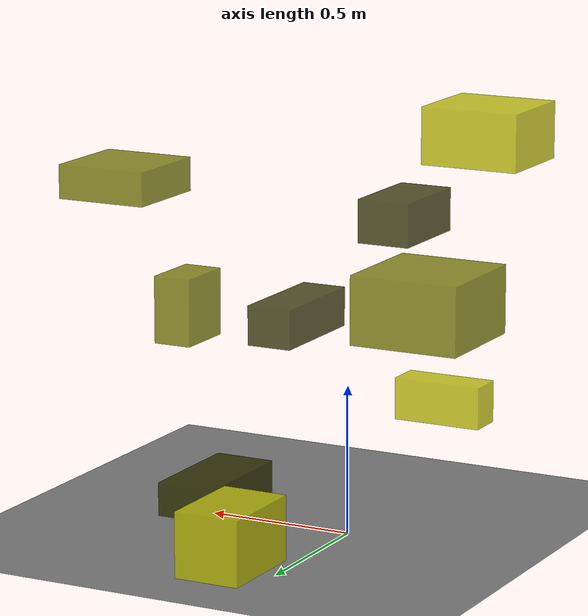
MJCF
<?xml version="1.0"?>
<mujoco model="obstacle_scene">
  <compiler angle="radian" coordinate="local"/>
  <option timestep="0.001" gravity="0 0 -9.81"/>

  <asset>
    <material name="obstacle_mat" rgba="0.8 0.8 0.0 0.8"/>
    <material name="ground_mat" rgba="0.5 0.5 0.5 1"/>
  </asset>

  <worldbody>
    <!-- Ground plane -->
    <geom name="ground" type="plane" size="3 3 0.1" material="ground_mat"/>

    <!-- Obstacles -->
    <body name="obstacle_0" pos="-0.116936 0.575802 0.869789">
      <geom name="obs_0" type="box" size="0.071110 0.181151 0.061280" rgba="0.2 0.2 0.0 0.8"/>
    </body>
    <body name="obstacle_1" pos="0.836605 -0.010790 1.112425">
      <geom name="obs_1" type="box" size="0.158229 0.159676 0.057436" rgba="0.5 0.5 0.0 0.8"/>
    </body>
    <body name="obstacle_2" pos="-0.419301 0.159028 0.544051">
      <geom name="obs_2" type="box" size="0.143801 0.056195 0.066829" rgba="0.8 0.8 0.0 0.8"/>
    </body>
    <body name="obstacle_3" pos="0.383280 0.196162 0.156226">
      <geom name="obs_3" type="box" size="0.101416 0.198719 0.055540" rgba="0.2 0.2 0.0 0.8"/>
    </body>
    <body name="obstacle_4" pos="0.014000 -0.632079 0.639697">
      <geom name="obs_4" type="box" size="0.196839 0.201915 0.121655" rgba="0.5 0.5 0.0 0.8"/>
    </body>
    <body name="obstacle_5" pos="-0.197521 -0.640100 1.250160">
      <geom name="obs_5" type="box" size="0.171389 0.158310 0.097594" rgba="0.8 0.8 0.0 0.8"/>
    </body>
    <body name="obstacle_6" pos="-0.088654 -0.229813 1.034051">
      <geom name="obs_6" type="box" size="0.089603 0.159069 0.072280" rgba="0.2 0.2 0.0 0.8"/>
    </body>
    <body name="obstacle_7" pos="0.955834 -0.628021 0.535768">
      <geom name="obs_7" type="box" size="0.070057 0.112593 0.121255" rgba="0.5 0.5 0.0 0.8"/>
    </body>
    <body name="obstacle_8" pos="0.144864 0.526657 0.115806">
      <geom name="obs_8" type="box" size="0.111631 0.162210 0.108353" rgba="0.8 0.8 0.0 0.8"/>
    </body>
  </worldbody>
</mujoco>
